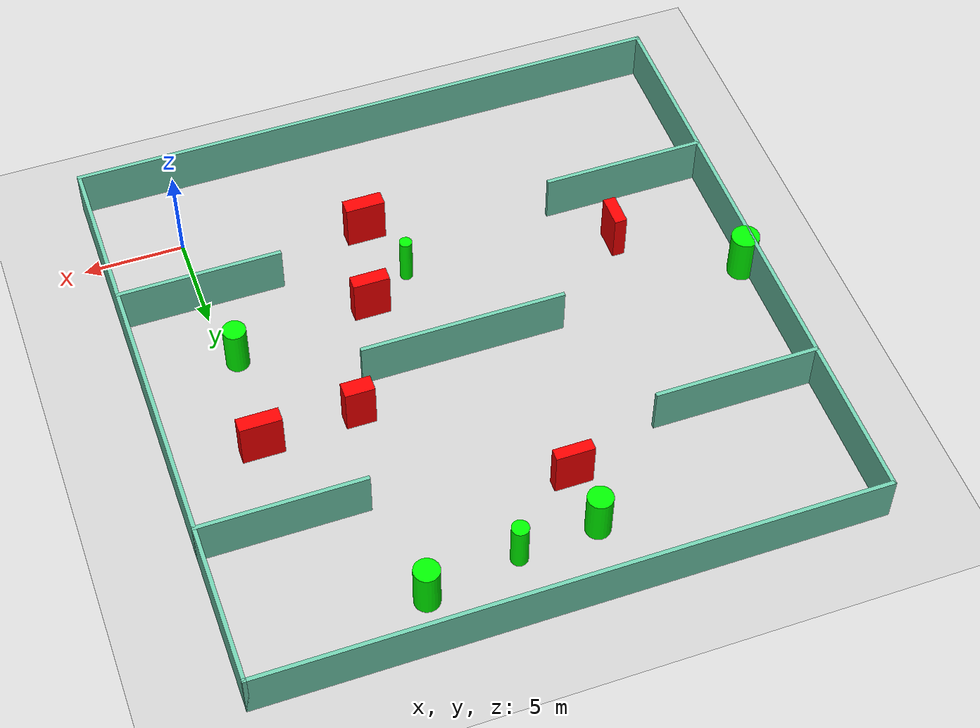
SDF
<sdf version="1.7">
 <world name="default">
  <light name="sun" type="directional">
   <pose>0 0 10 0 -0 0</pose>
   <diffuse>0.8 0.8 0.8 1</diffuse>
   <specular>0.2 0.2 0.2 1</specular>
   <attenuation>
    <range>1000</range>
    <constant>0.9</constant>
    <linear>0.01</linear>
    <quadratic>0.001</quadratic>
   </attenuation>
   <direction>-0.5 0.1 -0.9</direction>
   <spot><inner_angle>0</inner_angle><outer_angle>0</outer_angle><falloff>0</falloff></spot>
  </light>
  <model name="ground_plane">
   <static>1</static>
   <link name="link">
    <collision name="collision">
     <geometry><plane><normal>0 0 1</normal><size>100 100</size></plane></geometry>
     <surface>
      <contact><collide_bitmask>65535</collide_bitmask></contact>
      <friction><ode><mu>100</mu><mu2>50</mu2></ode></friction>
     </surface>
    </collision>
    <visual name="visual">
     <cast_shadows>0</cast_shadows>
     <geometry><plane><normal>0 0 1</normal><size>100 100</size></plane></geometry>
     <material>
      <script><uri>file://media/materials/scripts/gazebo.material</uri><name>Gazebo/Grey</name></script>
     </material>
    </visual>
   </link>
  </model>
  <gravity>0 0 -9.8</gravity>
  <magnetic_field>6e-06 2.3e-05 -4.2e-05</magnetic_field>
  <atmosphere type="adiabatic"/>
  <physics type="ode">
   <max_step_size>0.001</max_step_size>
   <real_time_factor>1</real_time_factor>
   <real_time_update_rate>1000</real_time_update_rate>
  </physics>
  <scene><ambient>0.4 0.4 0.4 1</ambient><background>0.7 0.7 0.7 1</background><shadows>1</shadows></scene>
  <spherical_coordinates>
   <surface_model>EARTH_WGS84</surface_model>
   <latitude_deg>0</latitude_deg>
   <longitude_deg>0</longitude_deg>
   <elevation>0</elevation>
   <heading_deg>0</heading_deg>
  </spherical_coordinates>
  <model name="my_base_walls">
   <link name="Wall_10">
    <collision name="Wall_10_Collision">
     <geometry><box><size>8.2 0.2 2.5</size></box></geometry>
     <pose>0 0 1.25 0 -0 0</pose>
    </collision>
    <visual name="Wall_10_Visual">
     <pose>0 0 1.25 0 -0 0</pose>
     <geometry><box><size>8.2 0.2 2.5</size></box></geometry>
     <material>
      <script><uri>file://media/materials/scripts/gazebo.material</uri><name>Gazebo/Grey</name></script>
      <ambient>0.435294 0.796078 0.67451 1</ambient>
     </material>
     <meta><layer>0</layer></meta>
    </visual>
    <pose>-11 -7 0 0 -0 0</pose>
   </link>
   <link name="Wall_12">
    <collision name="Wall_12_Collision">
     <geometry><box><size>8.2 0.2 2.5</size></box></geometry>
     <pose>0 0 1.25 0 -0 0</pose>
    </collision>
    <visual name="Wall_12_Visual">
     <pose>0 0 1.25 0 -0 0</pose>
     <geometry><box><size>8.2 0.2 2.5</size></box></geometry>
     <material>
      <script><uri>file://media/materials/scripts/gazebo.material</uri><name>Gazebo/Grey</name></script>
      <ambient>0.435294 0.796078 0.67451 1</ambient>
     </material>
     <meta><layer>0</layer></meta>
    </visual>
    <pose>-11 7 0 0 -0 0</pose>
   </link>
   <link name="Wall_14">
    <collision name="Wall_14_Collision">
     <geometry><box><size>8.2 0.2 2.5</size></box></geometry>
     <pose>0 0 1.25 0 -0 0</pose>
    </collision>
    <visual name="Wall_14_Visual">
     <pose>0 0 1.25 0 -0 0</pose>
     <geometry><box><size>8.2 0.2 2.5</size></box></geometry>
     <material>
      <script><uri>file://media/materials/scripts/gazebo.material</uri><name>Gazebo/Grey</name></script>
      <ambient>0.435294 0.796078 0.67451 1</ambient>
     </material>
     <meta><layer>0</layer></meta>
    </visual>
    <pose>11 7 0 0 -0 3.14159</pose>
   </link>
   <link name="Wall_16">
    <collision name="Wall_16_Collision">
     <geometry><box><size>10.2 0.2 2.5</size></box></geometry>
     <pose>0 0 1.25 0 -0 0</pose>
    </collision>
    <visual name="Wall_16_Visual">
     <pose>0 0 1.25 0 -0 0</pose>
     <geometry><box><size>10.2 0.2 2.5</size></box></geometry>
     <material>
      <script><uri>file://media/materials/scripts/gazebo.material</uri><name>Gazebo/Grey</name></script>
      <ambient>0.435294 0.796078 0.67451 1</ambient>
     </material>
     <meta><layer>0</layer></meta>
    </visual>
    <pose>0 0 0 0 -0 3.14159</pose>
   </link>
   <link name="Wall_2">
    <collision name="Wall_2_Collision">
     <geometry><box><size>30.2 0.2 2.5</size></box></geometry>
     <pose>0 0 1.25 0 -0 0</pose>
    </collision>
    <visual name="Wall_2_Visual">
     <pose>0 0 1.25 0 -0 0</pose>
     <geometry><box><size>30.2 0.2 2.5</size></box></geometry>
     <material>
      <script><uri>file://media/materials/scripts/gazebo.material</uri><name>Gazebo/Grey</name></script>
      <ambient>0.435294 0.796078 0.67451 1</ambient>
     </material>
     <meta><layer>0</layer></meta>
    </visual>
    <pose>0 -15 0 0 -0 3.14159</pose>
   </link>
   <link name="Wall_3">
    <collision name="Wall_3_Collision">
     <geometry><box><size>30.2 0.2 2.5</size></box></geometry>
     <pose>0 0 1.25 0 -0 0</pose>
    </collision>
    <visual name="Wall_3_Visual">
     <pose>0 0 1.25 0 -0 0</pose>
     <geometry><box><size>30.2 0.2 2.5</size></box></geometry>
     <material>
      <script><uri>file://media/materials/scripts/gazebo.material</uri><name>Gazebo/Grey</name></script>
      <ambient>0.435294 0.796078 0.67451 1</ambient>
     </material>
     <meta><layer>0</layer></meta>
    </visual>
    <pose>-15 0 0 0 -0 1.5708</pose>
   </link>
   <link name="Wall_4">
    <collision name="Wall_4_Collision">
     <geometry><box><size>30.2 0.2 2.5</size></box></geometry>
     <pose>0 0 1.25 0 -0 0</pose>
    </collision>
    <visual name="Wall_4_Visual">
     <pose>0 0 1.25 0 -0 0</pose>
     <geometry><box><size>30.2 0.2 2.5</size></box></geometry>
     <material>
      <script><uri>file://media/materials/scripts/gazebo.material</uri><name>Gazebo/Grey</name></script>
      <ambient>0.435294 0.796078 0.67451 1</ambient>
     </material>
     <meta><layer>0</layer></meta>
    </visual>
    <pose>0 15 0 0 -0 0</pose>
   </link>
   <link name="Wall_6">
    <collision name="Wall_6_Collision">
     <geometry><box><size>30.2 0.2 2.5</size></box></geometry>
     <pose>0 0 1.25 0 -0 0</pose>
    </collision>
    <visual name="Wall_6_Visual">
     <pose>0 0 1.25 0 -0 0</pose>
     <geometry><box><size>30.2 0.2 2.5</size></box></geometry>
     <material>
      <script><uri>file://media/materials/scripts/gazebo.material</uri><name>Gazebo/Grey</name></script>
      <ambient>0.435294 0.796078 0.67451 1</ambient>
     </material>
     <meta><layer>0</layer></meta>
    </visual>
    <pose>15 0 0 0 -0 1.5708</pose>
   </link>
   <link name="Wall_8">
    <collision name="Wall_8_Collision">
     <geometry><box><size>8.2 0.2 2.5</size></box></geometry>
     <pose>0 0 1.25 0 -0 0</pose>
    </collision>
    <visual name="Wall_8_Visual">
     <pose>0 0 1.25 0 -0 0</pose>
     <geometry><box><size>8.2 0.2 2.5</size></box></geometry>
     <material>
      <script><uri>file://media/materials/scripts/gazebo.material</uri><name>Gazebo/Grey</name></script>
      <ambient>0.435294 0.796078 0.67451 1</ambient>
     </material>
     <meta><layer>0</layer></meta>
    </visual>
    <pose>11 -7 0 0 -0 3.14159</pose>
   </link>
   <static>1</static>
   <pose>-11 11 0 0 -0 0</pose>
  </model>
  <model name="cylinder1">
   <static>1</static>
   <link name="link">
    <inertial>
     <mass>1</mass>
     <inertia><ixx>0.5</ixx><ixy>0</ixy><ixz>0</ixz><iyy>0.5</iyy><iyz>0</iyz><izz>1</izz></inertia>
    </inertial>
    <collision name="collision">
     <geometry><cylinder><radius>0.31646951668304407</radius><length>2.5</length></cylinder></geometry>
    </collision>
    <visual name="visual">
     <geometry><cylinder><radius>0.31646951668304407</radius><length>2.5</length></cylinder></geometry>
     <material>
      <ambient>0 1 0 1</ambient>
      <diffuse>0 1 0 1</diffuse>
      <specular>0.1 0.1 0.1 1</specular>
      <emissive>0 0 0 0</emissive>
     </material>
    </visual>
   </link>
   <pose>-9.988802456595415 5.4153283411744635 1.25 0 0 0</pose>
  </model>
  <model name="cylinder2">
   <static>1</static>
   <link name="link">
    <inertial>
     <mass>1</mass>
     <inertia><ixx>0.5</ixx><ixy>0</ixy><ixz>0</ixz><iyy>0.5</iyy><iyz>0</iyz><izz>1</izz></inertia>
    </inertial>
    <collision name="collision">
     <geometry><cylinder><radius>0.41962927409075146</radius><length>2.5</length></cylinder></geometry>
    </collision>
    <visual name="visual">
     <geometry><cylinder><radius>0.41962927409075146</radius><length>2.5</length></cylinder></geometry>
     <material>
      <ambient>0 1 0 1</ambient>
      <diffuse>0 1 0 1</diffuse>
      <specular>0.1 0.1 0.1 1</specular>
      <emissive>0 0 0 0</emissive>
     </material>
    </visual>
   </link>
   <pose>-9.495890466539255 22.739425320466406 1.25 0 0 0</pose>
  </model>
  <model name="cylinder3">
   <static>1</static>
   <link name="link">
    <inertial>
     <mass>1</mass>
     <inertia><ixx>0.5</ixx><ixy>0</ixy><ixz>0</ixz><iyy>0.5</iyy><iyz>0</iyz><izz>1</izz></inertia>
    </inertial>
    <collision name="collision">
     <geometry><cylinder><radius>0.6969901545829135</radius><length>2.5</length></cylinder></geometry>
    </collision>
    <visual name="visual">
     <geometry><cylinder><radius>0.6969901545829135</radius><length>2.5</length></cylinder></geometry>
     <material>
      <ambient>0 1 0 1</ambient>
      <diffuse>0 1 0 1</diffuse>
      <specular>0.1 0.1 0.1 1</specular>
      <emissive>0 0 0 0</emissive>
     </material>
    </visual>
   </link>
   <pose>-25.72496656101456 10.557766250921551 1.25 0 0 0</pose>
  </model>
  <model name="cylinder4">
   <static>1</static>
   <link name="link">
    <inertial>
     <mass>1</mass>
     <inertia><ixx>0.5</ixx><ixy>0</ixy><ixz>0</ixz><iyy>0.5</iyy><iyz>0</iyz><izz>1</izz></inertia>
    </inertial>
    <collision name="collision">
     <geometry><cylinder><radius>0.6178975810122536</radius><length>2.5</length></cylinder></geometry>
    </collision>
    <visual name="visual">
     <geometry><cylinder><radius>0.6178975810122536</radius><length>2.5</length></cylinder></geometry>
     <material>
      <ambient>0 1 0 1</ambient>
      <diffuse>0 1 0 1</diffuse>
      <specular>0.1 0.1 0.1 1</specular>
      <emissive>0 0 0 0</emissive>
     </material>
    </visual>
   </link>
   <pose>-13.401152812838163 22.413426999750367 1.25 0 0 0</pose>
  </model>
  <model name="cylinder5">
   <static>1</static>
   <link name="link">
    <inertial>
     <mass>1</mass>
     <inertia><ixx>0.5</ixx><ixy>0</ixy><ixz>0</ixz><iyy>0.5</iyy><iyz>0</iyz><izz>1</izz></inertia>
    </inertial>
    <collision name="collision">
     <geometry><cylinder><radius>0.5720933737559302</radius><length>2.5</length></cylinder></geometry>
    </collision>
    <visual name="visual">
     <geometry><cylinder><radius>0.5720933737559302</radius><length>2.5</length></cylinder></geometry>
     <material>
      <ambient>0 1 0 1</ambient>
      <diffuse>0 1 0 1</diffuse>
      <specular>0.1 0.1 0.1 1</specular>
      <emissive>0 0 0 0</emissive>
     </material>
    </visual>
   </link>
   <pose>-0.6487129525241357 7.909412872395091 1.25 0 0 0</pose>
  </model>
  <model name="cylinder6">
   <static>1</static>
   <link name="link">
    <inertial>
     <mass>1</mass>
     <inertia><ixx>0.5</ixx><ixy>0</ixy><ixz>0</ixz><iyy>0.5</iyy><iyz>0</iyz><izz>1</izz></inertia>
    </inertial>
    <collision name="collision">
     <geometry><cylinder><radius>0.6214920946711704</radius><length>2.5</length></cylinder></geometry>
    </collision>
    <visual name="visual">
     <geometry><cylinder><radius>0.6214920946711704</radius><length>2.5</length></cylinder></geometry>
     <material>
      <ambient>0 1 0 1</ambient>
      <diffuse>0 1 0 1</diffuse>
      <specular>0.1 0.1 0.1 1</specular>
      <emissive>0 0 0 0</emissive>
     </material>
    </visual>
   </link>
   <pose>-4.916149932213299 23.434511017283683 1.25 0 0 0</pose>
  </model>
  <model name="box1">
   <static>1</static>
   <link name="link">
    <inertial>
     <mass>1</mass>
     <inertia><ixx>0.083</ixx><ixy>0</ixy><ixz>0</ixz><iyy>0.083</iyy><iyz>0</iyz><izz>0.083</izz></inertia>
    </inertial>
    <collision name="collision">
     <geometry><box><size>1.8248031698157048 0.6913288022825325 2.5</size></box></geometry>
    </collision>
    <visual name="visual">
     <geometry><box><size>1.8248031698157048 0.6913288022825325 2.5</size></box></geometry>
     <material>
      <ambient>1 0 0 1</ambient>
      <diffuse>1 0 0 1</diffuse>
      <specular>0.1 0.1 0.1 1</specular>
      <emissive>0 0 0 0</emissive>
     </material>
    </visual>
    <sensor name="my_contact" type="contact">
     <contact><collision>box_collision</collision><topic>__default_topic__</topic></contact>
    </sensor>
   </link>
   <pose>-7.636238971315986 6.996829397994489 1.25 0 0 0</pose>
  </model>
  <model name="box2">
   <static>1</static>
   <link name="link">
    <inertial>
     <mass>1</mass>
     <inertia><ixx>0.083</ixx><ixy>0</ixy><ixz>0</ixz><iyy>0.083</iyy><iyz>0</iyz><izz>0.083</izz></inertia>
    </inertial>
    <collision name="collision">
     <geometry><box><size>1.464983286306386 0.8137654643397516 2.5</size></box></geometry>
    </collision>
    <visual name="visual">
     <geometry><box><size>1.464983286306386 0.8137654643397516 2.5</size></box></geometry>
     <material>
      <ambient>1 0 0 1</ambient>
      <diffuse>1 0 0 1</diffuse>
      <specular>0.1 0.1 0.1 1</specular>
      <emissive>0 0 0 0</emissive>
     </material>
    </visual>
    <sensor name="my_contact" type="contact">
     <contact><collision>box_collision</collision><topic>__default_topic__</topic></contact>
    </sensor>
   </link>
   <pose>-5.11995963783442 13.001430045916731 1.25 0 0 0</pose>
  </model>
  <model name="box3">
   <static>1</static>
   <link name="link">
    <inertial>
     <mass>1</mass>
     <inertia><ixx>0.083</ixx><ixy>0</ixy><ixz>0</ixz><iyy>0.083</iyy><iyz>0</iyz><izz>0.083</izz></inertia>
    </inertial>
    <collision name="collision">
     <geometry><box><size>1.8903493782823677 0.5854724076321144 2.5</size></box></geometry>
    </collision>
    <visual name="visual">
     <geometry><box><size>1.8903493782823677 0.5854724076321144 2.5</size></box></geometry>
     <material>
      <ambient>1 0 0 1</ambient>
      <diffuse>1 0 0 1</diffuse>
      <specular>0.1 0.1 0.1 1</specular>
      <emissive>0 0 0 0</emissive>
     </material>
    </visual>
    <sensor name="my_contact" type="contact">
     <contact><collision>box_collision</collision><topic>__default_topic__</topic></contact>
    </sensor>
   </link>
   <pose>-13.229038455205924 19.606284533786308 1.25 0 0 0</pose>
  </model>
  <model name="box4">
   <static>1</static>
   <link name="link">
    <inertial>
     <mass>1</mass>
     <inertia><ixx>0.083</ixx><ixy>0</ixy><ixz>0</ixz><iyy>0.083</iyy><iyz>0</iyz><izz>0.083</izz></inertia>
    </inertial>
    <collision name="collision">
     <geometry><box><size>0.6215147207451107 1.5916430888283843 2.5</size></box></geometry>
    </collision>
    <visual name="visual">
     <geometry><box><size>0.6215147207451107 1.5916430888283843 2.5</size></box></geometry>
     <material>
      <ambient>1 0 0 1</ambient>
      <diffuse>1 0 0 1</diffuse>
      <specular>0.1 0.1 0.1 1</specular>
      <emissive>0 0 0 0</emissive>
     </material>
    </visual>
    <sensor name="my_contact" type="contact">
     <contact><collision>box_collision</collision><topic>__default_topic__</topic></contact>
    </sensor>
   </link>
   <pose>-20.362744553712304 6.860948434036036 1.25 0 0 0</pose>
  </model>
  <model name="box5">
   <static>1</static>
   <link name="link">
    <inertial>
     <mass>1</mass>
     <inertia><ixx>0.083</ixx><ixy>0</ixy><ixz>0</ixz><iyy>0.083</iyy><iyz>0</iyz><izz>0.083</izz></inertia>
    </inertial>
    <collision name="collision">
     <geometry><box><size>1.9647292651692707 0.7442820992730781 2.5</size></box></geometry>
    </collision>
    <visual name="visual">
     <geometry><box><size>1.9647292651692707 0.7442820992730781 2.5</size></box></geometry>
     <material>
      <ambient>1 0 0 1</ambient>
      <diffuse>1 0 0 1</diffuse>
      <specular>0.1 0.1 0.1 1</specular>
      <emissive>0 0 0 0</emissive>
     </material>
    </visual>
    <sensor name="my_contact" type="contact">
     <contact><collision>box_collision</collision><topic>__default_topic__</topic></contact>
    </sensor>
   </link>
   <pose>-8.840581868161323 2.266082177306318 1.25 0 0 0</pose>
  </model>
  <model name="box6">
   <static>1</static>
   <link name="link">
    <inertial>
     <mass>1</mass>
     <inertia><ixx>0.083</ixx><ixy>0</ixy><ixz>0</ixz><iyy>0.083</iyy><iyz>0</iyz><izz>0.083</izz></inertia>
    </inertial>
    <collision name="collision">
     <geometry><box><size>2.058427526568721 0.7383239501295857 2.5</size></box></geometry>
    </collision>
    <visual name="visual">
     <geometry><box><size>2.058427526568721 0.7383239501295857 2.5</size></box></geometry>
     <material>
      <ambient>1 0 0 1</ambient>
      <diffuse>1 0 0 1</diffuse>
      <specular>0.1 0.1 0.1 1</specular>
      <emissive>0 0 0 0</emissive>
     </material>
    </visual>
    <sensor name="my_contact" type="contact">
     <contact><collision>box_collision</collision><topic>__default_topic__</topic></contact>
    </sensor>
   </link>
   <pose>-0.30111163480506065 13.305885715467387 1.25 0 0 0</pose>
  </model>
 </world>
</sdf>
